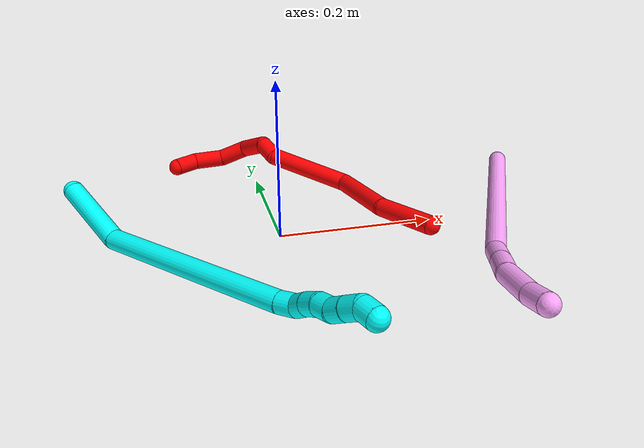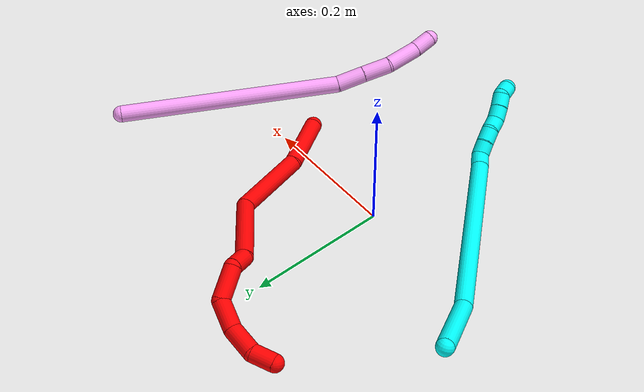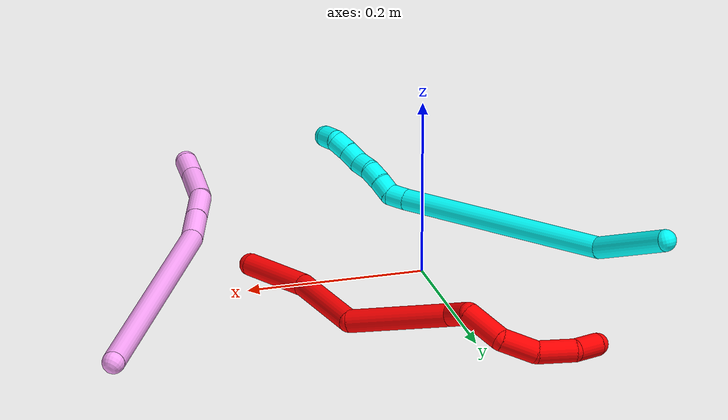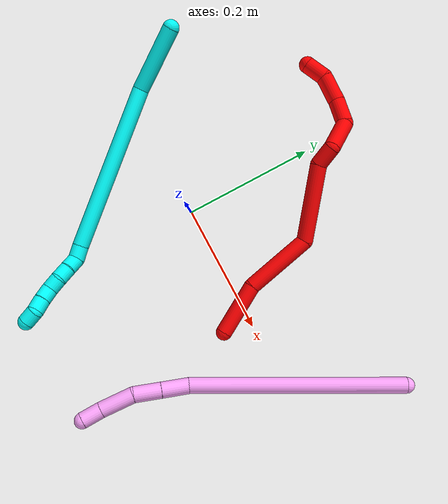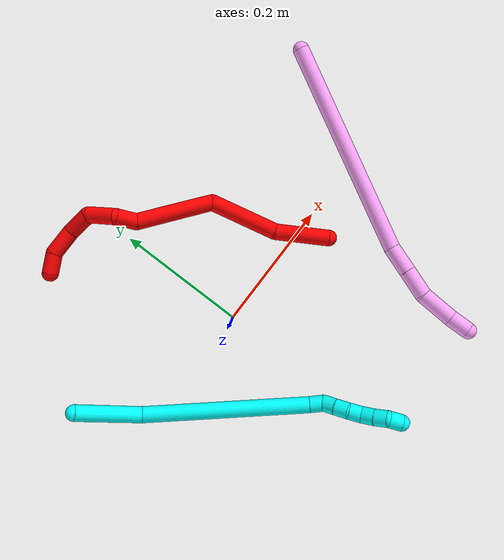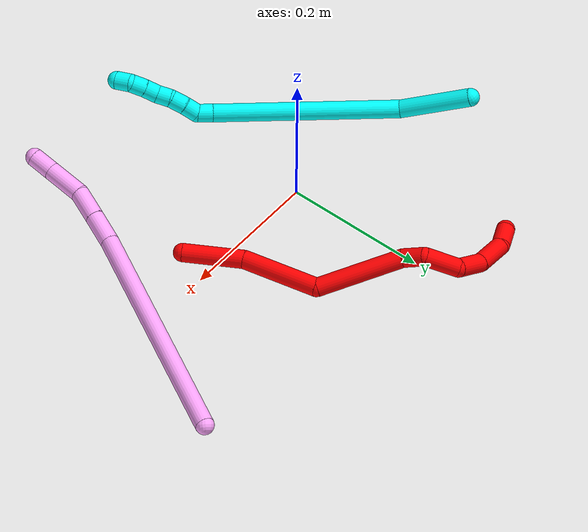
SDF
<sdf version="1.7">
 <world name="default">
  <model name="photoneo_s_sensor">
   <static>1</static>
   <pose>0 0 2 1.57079 1.57079 3.14159</pose>
   <link name="link">
    <inertial><mass>0.1</mass></inertial>
    <sensor name="sensor" type="depth">
     <update_rate>30</update_rate>
     <camera>
      <horizontal_fov>1.22</horizontal_fov>
      <image><width>1920</width><height>1200</height><format>B8G8R8</format></image>
      <clip><near>0.1</near><far>4</far></clip>
      <depth_camera><output>points</output></depth_camera>
     </camera>
     <plugin name="camera_plugin" filename="libgazebo_ros_depth_camera.so">
      <baseline>0.2</baseline>
      <alwaysOn>1</alwaysOn>
      <updateRate>0.0</updateRate>
      <cameraName>camera_ir</cameraName>
      <imageTopicName>/camera/color/image_raw</imageTopicName>
      <cameraInfoTopicName>/camera/color/camera_info</cameraInfoTopicName>
      <depthImageTopicName>/camera/depth/image_raw</depthImageTopicName>
      <depthImageCameraInfoTopicName>/camera/depth/camera_info</depthImageCameraInfoTopicName>
      <pointCloudTopicName>/camera/depth/points</pointCloudTopicName>
      <frameName>fr_optical</frameName>
      <pointCloudCutoff>0.1</pointCloudCutoff>
      <pointCloudCutoffMax>2.0</pointCloudCutoffMax>
      <distortionK1>0</distortionK1>
      <distortionK2>0</distortionK2>
      <distortionK3>0</distortionK3>
      <distortionT1>0</distortionT1>
      <distortionT2>0</distortionT2>
      <CxPrime>0</CxPrime>
      <Cx>0</Cx>
      <Cy>0</Cy>
      <focalLength>0</focalLength>
      <hackBaseline>0</hackBaseline>
     </plugin>
    </sensor>
   </link>
  </model>
  <model name="bin">
   <static>1</static>
   <link name="bottom">
    <collision name="collision-bottom">
     <pose>0 0 -0.01 0 -0 0</pose>
     <geometry><box><size>0.8 0.6 0.02</size></box></geometry>
     <surface>
      <friction><ode><mu>100</mu><mu2>100</mu2></ode></friction>
      <contact><collide_bitmask>65535</collide_bitmask></contact>
     </surface>
    </collision>
   </link>
   <link name="west_wall">
    <collision name="collision-west_wall">
     <pose>-0.41 0 0.1 0 -0 0</pose>
     <geometry><box><size>0.02 0.6 0.2</size></box></geometry>
     <surface>
      <friction><ode><mu>100</mu><mu2>100</mu2></ode></friction>
      <contact><collide_bitmask>65535</collide_bitmask></contact>
     </surface>
    </collision>
   </link>
   <link name="east_wall">
    <collision name="collision-east_wall">
     <pose>0.41 0 0.1 0 -0 0</pose>
     <geometry><box><size>0.02 0.6 0.2</size></box></geometry>
     <surface>
      <friction><ode><mu>100</mu><mu2>100</mu2></ode></friction>
      <contact><collide_bitmask>65535</collide_bitmask></contact>
     </surface>
    </collision>
   </link>
   <link name="south_wall">
    <collision name="collision-south_wall">
     <pose>0 -0.31 0.1 0 -0 0</pose>
     <geometry><box><size>0.8 0.02 0.2</size></box></geometry>
     <surface>
      <friction><ode><mu>100</mu><mu2>100</mu2></ode></friction>
      <contact><collide_bitmask>65535</collide_bitmask></contact>
     </surface>
    </collision>
   </link>
   <link name="north_wall">
    <collision name="collision-north_wall">
     <pose>0 0.31 0.1 0 -0 0</pose>
     <geometry><box><size>0.8 0.02 0.2</size></box></geometry>
     <surface>
      <friction><ode><mu>100</mu><mu2>100</mu2></ode></friction>
      <contact><collide_bitmask>65535</collide_bitmask></contact>
     </surface>
    </collision>
   </link>
  </model>
  <model name="2">
   <static>0</static>
   <link name="2">
    <collision name="collision-cylinder-e_1_1_4">
     <pose>-0.015662 0.020647 0.031912 -0.574262 -0.390855 0.116775</pose>
     <geometry><cylinder><radius>0.0125</radius><length>0.082219</length></cylinder></geometry>
     <surface>
      <friction><ode><mu>1.16</mu><mu2>1.16</mu2><slip1>0</slip1><slip2>0</slip2></ode></friction>
      <contact><ode><kp>1e+06</kp><kd>1</kd><max_vel>0</max_vel><min_depth>0.001</min_depth></ode></contact>
     </surface>
    </collision>
    <visual name="visual-cylinder-e_1_1_4">
     <pose>-0.015662 0.020647 0.031912 -0.574262 -0.390855 0.116775</pose>
     <geometry><cylinder><radius>0.0125</radius><length>0.082219</length></cylinder></geometry>
     <material><ambient>1 0 0 1</ambient></material>
    </visual>
    <collision name="collision-cylinder-e_2_4_5">
     <pose>-0.035295 0.068375 0.10907 -0.539337 -0.075164 0.020784</pose>
     <geometry><cylinder><radius>0.0125</radius><length>0.10576</length></cylinder></geometry>
     <surface>
      <friction><ode><mu>1.16</mu><mu2>1.16</mu2><slip1>0</slip1><slip2>0</slip2></ode></friction>
      <contact><ode><kp>1e+06</kp><kd>1</kd><max_vel>0</max_vel><min_depth>0.001</min_depth></ode></contact>
     </surface>
    </collision>
    <visual name="visual-cylinder-e_2_4_5">
     <pose>-0.035295 0.068375 0.10907 -0.539337 -0.075164 0.020784</pose>
     <geometry><cylinder><radius>0.0125</radius><length>0.10576</length></cylinder></geometry>
     <material><ambient>1 0 0 1</ambient></material>
    </visual>
    <collision name="collision-cylinder-e_3_5_6">
     <pose>-0.081511 0.10928 0.193198 -0.341603 -0.797118 0.145008</pose>
     <geometry><cylinder><radius>0.0125</radius><length>0.118114</length></cylinder></geometry>
     <surface>
      <friction><ode><mu>1.16</mu><mu2>1.16</mu2><slip1>0</slip1><slip2>0</slip2></ode></friction>
      <contact><ode><kp>1e+06</kp><kd>1</kd><max_vel>0</max_vel><min_depth>0.001</min_depth></ode></contact>
     </surface>
    </collision>
    <visual name="visual-cylinder-e_3_5_6">
     <pose>-0.081511 0.10928 0.193198 -0.341603 -0.797118 0.145008</pose>
     <geometry><cylinder><radius>0.0125</radius><length>0.118114</length></cylinder></geometry>
     <material><ambient>1 0 0 1</ambient></material>
    </visual>
    <collision name="collision-cylinder-e_4_6_7">
     <pose>-0.128564 0.125565 0.246769 -0.165962 -0.312197 0.026178</pose>
     <geometry><cylinder><radius>0.0125</radius><length>0.031297</length></cylinder></geometry>
     <surface>
      <friction><ode><mu>1.16</mu><mu2>1.16</mu2><slip1>0</slip1><slip2>0</slip2></ode></friction>
      <contact><ode><kp>1e+06</kp><kd>1</kd><max_vel>0</max_vel><min_depth>0.001</min_depth></ode></contact>
     </surface>
    </collision>
    <visual name="visual-cylinder-e_4_6_7">
     <pose>-0.128564 0.125565 0.246769 -0.165962 -0.312197 0.026178</pose>
     <geometry><cylinder><radius>0.0125</radius><length>0.031297</length></cylinder></geometry>
     <material><ambient>1 0 0 1</ambient></material>
    </visual>
    <collision name="collision-cylinder-e_5_7_8">
     <pose>-0.141258 0.146158 0.274407 -0.950589 -0.340228 0.176347</pose>
     <geometry><cylinder><radius>0.0125</radius><length>0.047276</length></cylinder></geometry>
     <surface>
      <friction><ode><mu>1.16</mu><mu2>1.16</mu2><slip1>0</slip1><slip2>0</slip2></ode></friction>
      <contact><ode><kp>1e+06</kp><kd>1</kd><max_vel>0</max_vel><min_depth>0.001</min_depth></ode></contact>
     </surface>
    </collision>
    <visual name="visual-cylinder-e_5_7_8">
     <pose>-0.141258 0.146158 0.274407 -0.950589 -0.340228 0.176347</pose>
     <geometry><cylinder><radius>0.0125</radius><length>0.047276</length></cylinder></geometry>
     <material><ambient>1 0 0 1</ambient></material>
    </visual>
    <collision name="collision-cylinder-e_6_8_9">
     <pose>-0.165353 0.176625 0.288458 -1.48186 -0.918368 0.84954</pose>
     <geometry><cylinder><radius>0.0125</radius><length>0.040792</length></cylinder></geometry>
     <surface>
      <friction><ode><mu>1.16</mu><mu2>1.16</mu2><slip1>0</slip1><slip2>0</slip2></ode></friction>
      <contact><ode><kp>1e+06</kp><kd>1</kd><max_vel>0</max_vel><min_depth>0.001</min_depth></ode></contact>
     </surface>
    </collision>
    <visual name="visual-cylinder-e_6_8_9">
     <pose>-0.165353 0.176625 0.288458 -1.48186 -0.918368 0.84954</pose>
     <geometry><cylinder><radius>0.0125</radius><length>0.040792</length></cylinder></geometry>
     <material><ambient>1 0 0 1</ambient></material>
    </visual>
    <collision name="collision-cylinder-e_7_9_10">
     <pose>-0.202155 0.194371 0.290642 -1.3731 -1.30891 1.12266</pose>
     <geometry><cylinder><radius>0.0125</radius><length>0.042643</length></cylinder></geometry>
     <surface>
      <friction><ode><mu>1.16</mu><mu2>1.16</mu2><slip1>0</slip1><slip2>0</slip2></ode></friction>
      <contact><ode><kp>1e+06</kp><kd>1</kd><max_vel>0</max_vel><min_depth>0.001</min_depth></ode></contact>
     </surface>
    </collision>
    <visual name="visual-cylinder-e_7_9_10">
     <pose>-0.202155 0.194371 0.290642 -1.3731 -1.30891 1.12266</pose>
     <geometry><cylinder><radius>0.0125</radius><length>0.042643</length></cylinder></geometry>
     <material><ambient>1 0 0 1</ambient></material>
    </visual>
    <collision name="collision-cylinder-e_8_10_2">
     <pose>-0.237651 0.200527 0.286088 -3.01059 -1.20623 2.95168</pose>
     <geometry><cylinder><radius>0.0125</radius><length>0.031899</length></cylinder></geometry>
     <surface>
      <friction><ode><mu>1.16</mu><mu2>1.16</mu2><slip1>0</slip1><slip2>0</slip2></ode></friction>
      <contact><ode><kp>1e+06</kp><kd>1</kd><max_vel>0</max_vel><min_depth>0.001</min_depth></ode></contact>
     </surface>
    </collision>
    <visual name="visual-cylinder-e_8_10_2">
     <pose>-0.237651 0.200527 0.286088 -3.01059 -1.20623 2.95168</pose>
     <geometry><cylinder><radius>0.0125</radius><length>0.031899</length></cylinder></geometry>
     <material><ambient>1 0 0 1</ambient></material>
    </visual>
    <collision name="collision-sphere-2">
     <pose>-0.252552 0.20127 0.28045 0 -0 0</pose>
     <geometry><sphere><radius>0.0125</radius></sphere></geometry>
     <surface>
      <friction><ode><mu>1.16</mu><mu2>1.16</mu2><slip1>0</slip1><slip2>0</slip2></ode></friction>
      <contact><ode><kp>1e+06</kp><kd>1</kd><max_vel>0</max_vel><min_depth>0.001</min_depth></ode></contact>
     </surface>
    </collision>
    <visual name="visual-sphere-2">
     <pose>-0.252552 0.20127 0.28045 0 -0 0</pose>
     <geometry><sphere><radius>0.0125</radius></sphere></geometry>
     <material><ambient>1 0 0 1</ambient></material>
    </visual>
    <collision name="collision-sphere-10">
     <pose>-0.222749 0.199784 0.291726 0 -0 0</pose>
     <geometry><sphere><radius>0.0125</radius></sphere></geometry>
     <surface>
      <friction><ode><mu>1.16</mu><mu2>1.16</mu2><slip1>0</slip1><slip2>0</slip2></ode></friction>
      <contact><ode><kp>1e+06</kp><kd>1</kd><max_vel>0</max_vel><min_depth>0.001</min_depth></ode></contact>
     </surface>
    </collision>
    <visual name="visual-sphere-10">
     <pose>-0.222749 0.199784 0.291726 0 -0 0</pose>
     <geometry><sphere><radius>0.0125</radius></sphere></geometry>
     <material><ambient>1 0 0 1</ambient></material>
    </visual>
    <collision name="collision-sphere-9">
     <pose>-0.181561 0.188959 0.289557 0 -0 0</pose>
     <geometry><sphere><radius>0.0125</radius></sphere></geometry>
     <surface>
      <friction><ode><mu>1.16</mu><mu2>1.16</mu2><slip1>0</slip1><slip2>0</slip2></ode></friction>
      <contact><ode><kp>1e+06</kp><kd>1</kd><max_vel>0</max_vel><min_depth>0.001</min_depth></ode></contact>
     </surface>
    </collision>
    <visual name="visual-sphere-9">
     <pose>-0.181561 0.188959 0.289557 0 -0 0</pose>
     <geometry><sphere><radius>0.0125</radius></sphere></geometry>
     <material><ambient>1 0 0 1</ambient></material>
    </visual>
    <collision name="collision-sphere-4">
     <pose>-0.031324 0.041294 0.063824 0 -0 0</pose>
     <geometry><sphere><radius>0.0125</radius></sphere></geometry>
     <surface>
      <friction><ode><mu>1.16</mu><mu2>1.16</mu2><slip1>0</slip1><slip2>0</slip2></ode></friction>
      <contact><ode><kp>1e+06</kp><kd>1</kd><max_vel>0</max_vel><min_depth>0.001</min_depth></ode></contact>
     </surface>
    </collision>
    <visual name="visual-sphere-4">
     <pose>-0.031324 0.041294 0.063824 0 -0 0</pose>
     <geometry><sphere><radius>0.0125</radius></sphere></geometry>
     <material><ambient>1 0 0 1</ambient></material>
    </visual>
    <collision name="collision-sphere-1">
     <geometry><sphere><radius>0.0125</radius></sphere></geometry>
     <surface>
      <friction><ode><mu>1.16</mu><mu2>1.16</mu2><slip1>0</slip1><slip2>0</slip2></ode></friction>
      <contact><ode><kp>1e+06</kp><kd>1</kd><max_vel>0</max_vel><min_depth>0.001</min_depth></ode></contact>
     </surface>
    </collision>
    <visual name="visual-sphere-1">
     <geometry><sphere><radius>0.0125</radius></sphere></geometry>
     <material><ambient>1 0 0 1</ambient></material>
    </visual>
    <collision name="collision-sphere-8">
     <pose>-0.149146 0.164291 0.287358 0 -0 0</pose>
     <geometry><sphere><radius>0.0125</radius></sphere></geometry>
     <surface>
      <friction><ode><mu>1.16</mu><mu2>1.16</mu2><slip1>0</slip1><slip2>0</slip2></ode></friction>
      <contact><ode><kp>1e+06</kp><kd>1</kd><max_vel>0</max_vel><min_depth>0.001</min_depth></ode></contact>
     </surface>
    </collision>
    <visual name="visual-sphere-8">
     <pose>-0.149146 0.164291 0.287358 0 -0 0</pose>
     <geometry><sphere><radius>0.0125</radius></sphere></geometry>
     <material><ambient>1 0 0 1</ambient></material>
    </visual>
    <collision name="collision-sphere-5">
     <pose>-0.039265 0.095456 0.154316 0 -0 0</pose>
     <geometry><sphere><radius>0.0125</radius></sphere></geometry>
     <surface>
      <friction><ode><mu>1.16</mu><mu2>1.16</mu2><slip1>0</slip1><slip2>0</slip2></ode></friction>
      <contact><ode><kp>1e+06</kp><kd>1</kd><max_vel>0</max_vel><min_depth>0.001</min_depth></ode></contact>
     </surface>
    </collision>
    <visual name="visual-sphere-5">
     <pose>-0.039265 0.095456 0.154316 0 -0 0</pose>
     <geometry><sphere><radius>0.0125</radius></sphere></geometry>
     <material><ambient>1 0 0 1</ambient></material>
    </visual>
    <collision name="collision-sphere-6">
     <pose>-0.123758 0.123105 0.232081 0 -0 0</pose>
     <geometry><sphere><radius>0.0125</radius></sphere></geometry>
     <surface>
      <friction><ode><mu>1.16</mu><mu2>1.16</mu2><slip1>0</slip1><slip2>0</slip2></ode></friction>
      <contact><ode><kp>1e+06</kp><kd>1</kd><max_vel>0</max_vel><min_depth>0.001</min_depth></ode></contact>
     </surface>
    </collision>
    <visual name="visual-sphere-6">
     <pose>-0.123758 0.123105 0.232081 0 -0 0</pose>
     <geometry><sphere><radius>0.0125</radius></sphere></geometry>
     <material><ambient>1 0 0 1</ambient></material>
    </visual>
    <collision name="collision-sphere-7">
     <pose>-0.13337 0.128025 0.261456 0 -0 0</pose>
     <geometry><sphere><radius>0.0125</radius></sphere></geometry>
     <surface>
      <friction><ode><mu>1.16</mu><mu2>1.16</mu2><slip1>0</slip1><slip2>0</slip2></ode></friction>
      <contact><ode><kp>1e+06</kp><kd>1</kd><max_vel>0</max_vel><min_depth>0.001</min_depth></ode></contact>
     </surface>
    </collision>
    <visual name="visual-sphere-7">
     <pose>-0.13337 0.128025 0.261456 0 -0 0</pose>
     <geometry><sphere><radius>0.0125</radius></sphere></geometry>
     <material><ambient>1 0 0 1</ambient></material>
    </visual>
    <inertial>
     <pose>-0.096593 0.109132 0.181922 0 -0 0</pose>
     <mass>0.5</mass>
     <inertia>
      <ixx>0.000271</ixx>
      <ixy>0</ixy>
      <ixz>0</ixz>
      <iyy>0.000339</iyy>
      <iyz>0</iyz>
      <izz>4.6e-05</izz>
     </inertia>
    </inertial>
   </link>
   <pose>0.185904 -0.042145 0.012139 -1.05073 0.139214 0.140332</pose>
  </model>
  <model name="3">
   <static>0</static>
   <link name="3">
    <collision name="collision-cylinder-e_1_1_4">
     <pose>0.022117 -0.045421 0.004874 1.46389 0.450892 0.40641</pose>
     <geometry><cylinder><radius>0.0125</radius><length>0.101509</length></cylinder></geometry>
     <surface>
      <friction><ode><mu>1.16</mu><mu2>1.16</mu2><slip1>0</slip1><slip2>0</slip2></ode></friction>
      <contact><ode><kp>1e+06</kp><kd>1</kd><max_vel>0</max_vel><min_depth>0.001</min_depth></ode></contact>
     </surface>
    </collision>
    <visual name="visual-cylinder-e_1_1_4">
     <pose>0.022117 -0.045421 0.004874 1.46389 0.450892 0.40641</pose>
     <geometry><cylinder><radius>0.0125</radius><length>0.101509</length></cylinder></geometry>
     <material><ambient>0.003922 1 0.996078 1</ambient></material>
    </visual>
    <collision name="collision-cylinder-e_2_4_5">
     <pose>0.118193 -0.180299 0.063463 1.03005 0.61661 0.35665</pose>
     <geometry><cylinder><radius>0.0125</radius><length>0.255792</length></cylinder></geometry>
     <surface>
      <friction><ode><mu>1.16</mu><mu2>1.16</mu2><slip1>0</slip1><slip2>0</slip2></ode></friction>
      <contact><ode><kp>1e+06</kp><kd>1</kd><max_vel>0</max_vel><min_depth>0.001</min_depth></ode></contact>
     </surface>
    </collision>
    <visual name="visual-cylinder-e_2_4_5">
     <pose>0.118193 -0.180299 0.063463 1.03005 0.61661 0.35665</pose>
     <geometry><cylinder><radius>0.0125</radius><length>0.255792</length></cylinder></geometry>
     <material><ambient>0.003922 1 0.996078 1</ambient></material>
    </visual>
    <collision name="collision-cylinder-e_3_5_6">
     <pose>0.198849 -0.276346 0.122466 0.89448 0.670097 0.330954</pose>
     <geometry><cylinder><radius>0.0125</radius><length>0.021566</length></cylinder></geometry>
     <surface>
      <friction><ode><mu>1.16</mu><mu2>1.16</mu2><slip1>0</slip1><slip2>0</slip2></ode></friction>
      <contact><ode><kp>1e+06</kp><kd>1</kd><max_vel>0</max_vel><min_depth>0.001</min_depth></ode></contact>
     </surface>
    </collision>
    <visual name="visual-cylinder-e_3_5_6">
     <pose>0.198849 -0.276346 0.122466 0.89448 0.670097 0.330954</pose>
     <geometry><cylinder><radius>0.0125</radius><length>0.021566</length></cylinder></geometry>
     <material><ambient>0.003922 1 0.996078 1</ambient></material>
    </visual>
    <collision name="collision-cylinder-e_4_6_7">
     <pose>0.207947 -0.28768 0.136397 0.502023 0.238919 0.061537</pose>
     <geometry><cylinder><radius>0.0125</radius><length>0.020291</length></cylinder></geometry>
     <surface>
      <friction><ode><mu>1.16</mu><mu2>1.16</mu2><slip1>0</slip1><slip2>0</slip2></ode></friction>
      <contact><ode><kp>1e+06</kp><kd>1</kd><max_vel>0</max_vel><min_depth>0.001</min_depth></ode></contact>
     </surface>
    </collision>
    <visual name="visual-cylinder-e_4_6_7">
     <pose>0.207947 -0.28768 0.136397 0.502023 0.238919 0.061537</pose>
     <geometry><cylinder><radius>0.0125</radius><length>0.020291</length></cylinder></geometry>
     <material><ambient>0.003922 1 0.996078 1</ambient></material>
    </visual>
    <collision name="collision-cylinder-e_5_7_8">
     <pose>0.212975 -0.29824 0.153221 0.617918 0.255907 0.082083</pose>
     <geometry><cylinder><radius>0.0125</radius><length>0.020754</length></cylinder></geometry>
     <surface>
      <friction><ode><mu>1.16</mu><mu2>1.16</mu2><slip1>0</slip1><slip2>0</slip2></ode></friction>
      <contact><ode><kp>1e+06</kp><kd>1</kd><max_vel>0</max_vel><min_depth>0.001</min_depth></ode></contact>
     </surface>
    </collision>
    <visual name="visual-cylinder-e_5_7_8">
     <pose>0.212975 -0.29824 0.153221 0.617918 0.255907 0.082083</pose>
     <geometry><cylinder><radius>0.0125</radius><length>0.020754</length></cylinder></geometry>
     <material><ambient>0.003922 1 0.996078 1</ambient></material>
    </visual>
    <collision name="collision-cylinder-e_6_8_9">
     <pose>0.218482 -0.31161 0.16731 0.90727 0.291837 0.143058</pose>
     <geometry><cylinder><radius>0.0125</radius><length>0.020024</length></cylinder></geometry>
     <surface>
      <friction><ode><mu>1.16</mu><mu2>1.16</mu2><slip1>0</slip1><slip2>0</slip2></ode></friction>
      <contact><ode><kp>1e+06</kp><kd>1</kd><max_vel>0</max_vel><min_depth>0.001</min_depth></ode></contact>
     </surface>
    </collision>
    <visual name="visual-cylinder-e_6_8_9">
     <pose>0.218482 -0.31161 0.16731 0.90727 0.291837 0.143058</pose>
     <geometry><cylinder><radius>0.0125</radius><length>0.020024</length></cylinder></geometry>
     <material><ambient>0.003922 1 0.996078 1</ambient></material>
    </visual>
    <collision name="collision-cylinder-e_7_9_10">
     <pose>0.224757 -0.323922 0.181342 0.529639 0.345918 0.094685</pose>
     <geometry><cylinder><radius>0.0125</radius><length>0.020019</length></cylinder></geometry>
     <surface>
      <friction><ode><mu>1.16</mu><mu2>1.16</mu2><slip1>0</slip1><slip2>0</slip2></ode></friction>
      <contact><ode><kp>1e+06</kp><kd>1</kd><max_vel>0</max_vel><min_depth>0.001</min_depth></ode></contact>
     </surface>
    </collision>
    <visual name="visual-cylinder-e_7_9_10">
     <pose>0.224757 -0.323922 0.181342 0.529639 0.345918 0.094685</pose>
     <geometry><cylinder><radius>0.0125</radius><length>0.020019</length></cylinder></geometry>
     <material><ambient>0.003922 1 0.996078 1</ambient></material>
    </visual>
    <collision name="collision-cylinder-e_8_10_11">
     <pose>0.232297 -0.333404 0.197254 0.545451 0.427258 0.121205</pose>
     <geometry><cylinder><radius>0.0125</radius><length>0.020015</length></cylinder></geometry>
     <surface>
      <friction><ode><mu>1.16</mu><mu2>1.16</mu2><slip1>0</slip1><slip2>0</slip2></ode></friction>
      <contact><ode><kp>1e+06</kp><kd>1</kd><max_vel>0</max_vel><min_depth>0.001</min_depth></ode></contact>
     </surface>
    </collision>
    <visual name="visual-cylinder-e_8_10_11">
     <pose>0.232297 -0.333404 0.197254 0.545451 0.427258 0.121205</pose>
     <geometry><cylinder><radius>0.0125</radius><length>0.020015</length></cylinder></geometry>
     <material><ambient>0.003922 1 0.996078 1</ambient></material>
    </visual>
    <collision name="collision-cylinder-e_9_11_2">
     <pose>0.239193 -0.346834 0.20916 1.12874 0.278006 0.176675</pose>
     <geometry><cylinder><radius>0.0125</radius><length>0.020028</length></cylinder></geometry>
     <surface>
      <friction><ode><mu>1.16</mu><mu2>1.16</mu2><slip1>0</slip1><slip2>0</slip2></ode></friction>
      <contact><ode><kp>1e+06</kp><kd>1</kd><max_vel>0</max_vel><min_depth>0.001</min_depth></ode></contact>
     </surface>
    </collision>
    <visual name="visual-cylinder-e_9_11_2">
     <pose>0.239193 -0.346834 0.20916 1.12874 0.278006 0.176675</pose>
     <geometry><cylinder><radius>0.0125</radius><length>0.020028</length></cylinder></geometry>
     <material><ambient>0.003922 1 0.996078 1</ambient></material>
    </visual>
    <collision name="collision-sphere-2">
     <pose>0.241941 -0.355538 0.21328 0 -0 0</pose>
     <geometry><sphere><radius>0.0125</radius></sphere></geometry>
     <surface>
      <friction><ode><mu>1.16</mu><mu2>1.16</mu2><slip1>0</slip1><slip2>0</slip2></ode></friction>
      <contact><ode><kp>1e+06</kp><kd>1</kd><max_vel>0</max_vel><min_depth>0.001</min_depth></ode></contact>
     </surface>
    </collision>
    <visual name="visual-sphere-2">
     <pose>0.241941 -0.355538 0.21328 0 -0 0</pose>
     <geometry><sphere><radius>0.0125</radius></sphere></geometry>
     <material><ambient>0.003922 1 0.996078 1</ambient></material>
    </visual>
    <collision name="collision-sphere-11">
     <pose>0.236444 -0.33813 0.205041 0 -0 0</pose>
     <geometry><sphere><radius>0.0125</radius></sphere></geometry>
     <surface>
      <friction><ode><mu>1.16</mu><mu2>1.16</mu2><slip1>0</slip1><slip2>0</slip2></ode></friction>
      <contact><ode><kp>1e+06</kp><kd>1</kd><max_vel>0</max_vel><min_depth>0.001</min_depth></ode></contact>
     </surface>
    </collision>
    <visual name="visual-sphere-11">
     <pose>0.236444 -0.33813 0.205041 0 -0 0</pose>
     <geometry><sphere><radius>0.0125</radius></sphere></geometry>
     <material><ambient>0.003922 1 0.996078 1</ambient></material>
    </visual>
    <collision name="collision-sphere-10">
     <pose>0.22815 -0.328679 0.189468 0 -0 0</pose>
     <geometry><sphere><radius>0.0125</radius></sphere></geometry>
     <surface>
      <friction><ode><mu>1.16</mu><mu2>1.16</mu2><slip1>0</slip1><slip2>0</slip2></ode></friction>
      <contact><ode><kp>1e+06</kp><kd>1</kd><max_vel>0</max_vel><min_depth>0.001</min_depth></ode></contact>
     </surface>
    </collision>
    <visual name="visual-sphere-10">
     <pose>0.22815 -0.328679 0.189468 0 -0 0</pose>
     <geometry><sphere><radius>0.0125</radius></sphere></geometry>
     <material><ambient>0.003922 1 0.996078 1</ambient></material>
    </visual>
    <collision name="collision-sphere-9">
     <pose>0.221363 -0.319164 0.173216 0 -0 0</pose>
     <geometry><sphere><radius>0.0125</radius></sphere></geometry>
     <surface>
      <friction><ode><mu>1.16</mu><mu2>1.16</mu2><slip1>0</slip1><slip2>0</slip2></ode></friction>
      <contact><ode><kp>1e+06</kp><kd>1</kd><max_vel>0</max_vel><min_depth>0.001</min_depth></ode></contact>
     </surface>
    </collision>
    <visual name="visual-sphere-9">
     <pose>0.221363 -0.319164 0.173216 0 -0 0</pose>
     <geometry><sphere><radius>0.0125</radius></sphere></geometry>
     <material><ambient>0.003922 1 0.996078 1</ambient></material>
    </visual>
    <collision name="collision-sphere-4">
     <pose>0.044234 -0.090843 0.009749 0 -0 0</pose>
     <geometry><sphere><radius>0.0125</radius></sphere></geometry>
     <surface>
      <friction><ode><mu>1.16</mu><mu2>1.16</mu2><slip1>0</slip1><slip2>0</slip2></ode></friction>
      <contact><ode><kp>1e+06</kp><kd>1</kd><max_vel>0</max_vel><min_depth>0.001</min_depth></ode></contact>
     </surface>
    </collision>
    <visual name="visual-sphere-4">
     <pose>0.044234 -0.090843 0.009749 0 -0 0</pose>
     <geometry><sphere><radius>0.0125</radius></sphere></geometry>
     <material><ambient>0.003922 1 0.996078 1</ambient></material>
    </visual>
    <collision name="collision-sphere-1">
     <geometry><sphere><radius>0.0125</radius></sphere></geometry>
     <surface>
      <friction><ode><mu>1.16</mu><mu2>1.16</mu2><slip1>0</slip1><slip2>0</slip2></ode></friction>
      <contact><ode><kp>1e+06</kp><kd>1</kd><max_vel>0</max_vel><min_depth>0.001</min_depth></ode></contact>
     </surface>
    </collision>
    <visual name="visual-sphere-1">
     <geometry><sphere><radius>0.0125</radius></sphere></geometry>
     <material><ambient>0.003922 1 0.996078 1</ambient></material>
    </visual>
    <collision name="collision-sphere-8">
     <pose>0.215602 -0.304056 0.161404 0 -0 0</pose>
     <geometry><sphere><radius>0.0125</radius></sphere></geometry>
     <surface>
      <friction><ode><mu>1.16</mu><mu2>1.16</mu2><slip1>0</slip1><slip2>0</slip2></ode></friction>
      <contact><ode><kp>1e+06</kp><kd>1</kd><max_vel>0</max_vel><min_depth>0.001</min_depth></ode></contact>
     </surface>
    </collision>
    <visual name="visual-sphere-8">
     <pose>0.215602 -0.304056 0.161404 0 -0 0</pose>
     <geometry><sphere><radius>0.0125</radius></sphere></geometry>
     <material><ambient>0.003922 1 0.996078 1</ambient></material>
    </visual>
    <collision name="collision-sphere-5">
     <pose>0.192152 -0.269755 0.117176 0 -0 0</pose>
     <geometry><sphere><radius>0.0125</radius></sphere></geometry>
     <surface>
      <friction><ode><mu>1.16</mu><mu2>1.16</mu2><slip1>0</slip1><slip2>0</slip2></ode></friction>
      <contact><ode><kp>1e+06</kp><kd>1</kd><max_vel>0</max_vel><min_depth>0.001</min_depth></ode></contact>
     </surface>
    </collision>
    <visual name="visual-sphere-5">
     <pose>0.192152 -0.269755 0.117176 0 -0 0</pose>
     <geometry><sphere><radius>0.0125</radius></sphere></geometry>
     <material><ambient>0.003922 1 0.996078 1</ambient></material>
    </visual>
    <collision name="collision-sphere-6">
     <pose>0.205546 -0.282937 0.127756 0 -0 0</pose>
     <geometry><sphere><radius>0.0125</radius></sphere></geometry>
     <surface>
      <friction><ode><mu>1.16</mu><mu2>1.16</mu2><slip1>0</slip1><slip2>0</slip2></ode></friction>
      <contact><ode><kp>1e+06</kp><kd>1</kd><max_vel>0</max_vel><min_depth>0.001</min_depth></ode></contact>
     </surface>
    </collision>
    <visual name="visual-sphere-6">
     <pose>0.205546 -0.282937 0.127756 0 -0 0</pose>
     <geometry><sphere><radius>0.0125</radius></sphere></geometry>
     <material><ambient>0.003922 1 0.996078 1</ambient></material>
    </visual>
    <collision name="collision-sphere-7">
     <pose>0.210348 -0.292424 0.145039 0 -0 0</pose>
     <geometry><sphere><radius>0.0125</radius></sphere></geometry>
     <surface>
      <friction><ode><mu>1.16</mu><mu2>1.16</mu2><slip1>0</slip1><slip2>0</slip2></ode></friction>
      <contact><ode><kp>1e+06</kp><kd>1</kd><max_vel>0</max_vel><min_depth>0.001</min_depth></ode></contact>
     </surface>
    </collision>
    <visual name="visual-sphere-7">
     <pose>0.210348 -0.292424 0.145039 0 -0 0</pose>
     <geometry><sphere><radius>0.0125</radius></sphere></geometry>
     <material><ambient>0.003922 1 0.996078 1</ambient></material>
    </visual>
    <inertial>
     <pose>0.127441 -0.190121 0.080869 0 -0 0</pose>
     <mass>0.5</mass>
     <inertia>
      <ixx>0.001612</ixx>
      <ixy>0</ixy>
      <ixz>0</ixz>
      <iyy>0.001359</iyy>
      <iyz>0</iyz>
      <izz>0.000231</izz>
     </inertia>
    </inertial>
   </link>
   <pose>-0.249275 0.101224 0.049074 0.473539 0.098681 0.092715</pose>
  </model>
  <model name="4">
   <static>0</static>
   <link name="4">
    <collision name="collision-cylinder-e_1_1_4">
     <pose>-0.042188 -0.090936 -0.132316 2.53946 -0.256961 -0.788572</pose>
     <geometry><cylinder><radius>0.0125</radius><length>0.332005</length></cylinder></geometry>
     <surface>
      <friction><ode><mu>1.16</mu><mu2>1.16</mu2><slip1>0</slip1><slip2>0</slip2></ode></friction>
      <contact><ode><kp>1e+06</kp><kd>1</kd><max_vel>0</max_vel><min_depth>0.001</min_depth></ode></contact>
     </surface>
    </collision>
    <visual name="visual-cylinder-e_1_1_4">
     <pose>-0.042188 -0.090936 -0.132316 2.53946 -0.256961 -0.788572</pose>
     <geometry><cylinder><radius>0.0125</radius><length>0.332005</length></cylinder></geometry>
     <material><ambient>1 0.65098 0.996078 1</ambient></material>
    </visual>
    <collision name="collision-cylinder-e_2_4_5">
     <pose>-0.092463 -0.189575 -0.282928 2.74313 -0.386831 -1.54039</pose>
     <geometry><cylinder><radius>0.0125</radius><length>0.042868</length></cylinder></geometry>
     <surface>
      <friction><ode><mu>1.16</mu><mu2>1.16</mu2><slip1>0</slip1><slip2>0</slip2></ode></friction>
      <contact><ode><kp>1e+06</kp><kd>1</kd><max_vel>0</max_vel><min_depth>0.001</min_depth></ode></contact>
     </surface>
    </collision>
    <visual name="visual-cylinder-e_2_4_5">
     <pose>-0.092463 -0.189575 -0.282928 2.74313 -0.386831 -1.54039</pose>
     <geometry><cylinder><radius>0.0125</radius><length>0.042868</length></cylinder></geometry>
     <material><ambient>1 0.65098 0.996078 1</ambient></material>
    </visual>
    <collision name="collision-cylinder-e_3_5_6">
     <pose>-0.108521 -0.205278 -0.318996 2.71859 -0.388252 -1.48278</pose>
     <geometry><cylinder><radius>0.0125</radius><length>0.042117</length></cylinder></geometry>
     <surface>
      <friction><ode><mu>1.16</mu><mu2>1.16</mu2><slip1>0</slip1><slip2>0</slip2></ode></friction>
      <contact><ode><kp>1e+06</kp><kd>1</kd><max_vel>0</max_vel><min_depth>0.001</min_depth></ode></contact>
     </surface>
    </collision>
    <visual name="visual-cylinder-e_3_5_6">
     <pose>-0.108521 -0.205278 -0.318996 2.71859 -0.388252 -1.48278</pose>
     <geometry><cylinder><radius>0.0125</radius><length>0.042117</length></cylinder></geometry>
     <material><ambient>1 0.65098 0.996078 1</ambient></material>
    </visual>
    <collision name="collision-cylinder-e_4_6_7">
     <pose>-0.132976 -0.223028 -0.35443 2.63724 -0.685086 -1.89019</pose>
     <geometry><cylinder><radius>0.0125</radius><length>0.052101</length></cylinder></geometry>
     <surface>
      <friction><ode><mu>1.16</mu><mu2>1.16</mu2><slip1>0</slip1><slip2>0</slip2></ode></friction>
      <contact><ode><kp>1e+06</kp><kd>1</kd><max_vel>0</max_vel><min_depth>0.001</min_depth></ode></contact>
     </surface>
    </collision>
    <visual name="visual-cylinder-e_4_6_7">
     <pose>-0.132976 -0.223028 -0.35443 2.63724 -0.685086 -1.89019</pose>
     <geometry><cylinder><radius>0.0125</radius><length>0.052101</length></cylinder></geometry>
     <material><ambient>1 0.65098 0.996078 1</ambient></material>
    </visual>
    <collision name="collision-cylinder-e_5_7_2">
     <pose>-0.159907 -0.236795 -0.382747 2.78094 -0.742327 -2.26548</pose>
     <geometry><cylinder><radius>0.0125</radius><length>0.030908</length></cylinder></geometry>
     <surface>
      <friction><ode><mu>1.16</mu><mu2>1.16</mu2><slip1>0</slip1><slip2>0</slip2></ode></friction>
      <contact><ode><kp>1e+06</kp><kd>1</kd><max_vel>0</max_vel><min_depth>0.001</min_depth></ode></contact>
     </surface>
    </collision>
    <visual name="visual-cylinder-e_5_7_2">
     <pose>-0.159907 -0.236795 -0.382747 2.78094 -0.742327 -2.26548</pose>
     <geometry><cylinder><radius>0.0125</radius><length>0.030908</length></cylinder></geometry>
     <material><ambient>1 0.65098 0.996078 1</ambient></material>
    </visual>
    <collision name="collision-sphere-2">
     <pose>-0.170354 -0.240813 -0.393402 0 -0 0</pose>
     <geometry><sphere><radius>0.0125</radius></sphere></geometry>
     <surface>
      <friction><ode><mu>1.16</mu><mu2>1.16</mu2><slip1>0</slip1><slip2>0</slip2></ode></friction>
      <contact><ode><kp>1e+06</kp><kd>1</kd><max_vel>0</max_vel><min_depth>0.001</min_depth></ode></contact>
     </surface>
    </collision>
    <visual name="visual-sphere-2">
     <pose>-0.170354 -0.240813 -0.393402 0 -0 0</pose>
     <geometry><sphere><radius>0.0125</radius></sphere></geometry>
     <material><ambient>1 0.65098 0.996078 1</ambient></material>
    </visual>
    <collision name="collision-sphere-7">
     <pose>-0.14946 -0.232776 -0.372091 0 -0 0</pose>
     <geometry><sphere><radius>0.0125</radius></sphere></geometry>
     <surface>
      <friction><ode><mu>1.16</mu><mu2>1.16</mu2><slip1>0</slip1><slip2>0</slip2></ode></friction>
      <contact><ode><kp>1e+06</kp><kd>1</kd><max_vel>0</max_vel><min_depth>0.001</min_depth></ode></contact>
     </surface>
    </collision>
    <visual name="visual-sphere-7">
     <pose>-0.14946 -0.232776 -0.372091 0 -0 0</pose>
     <geometry><sphere><radius>0.0125</radius></sphere></geometry>
     <material><ambient>1 0.65098 0.996078 1</ambient></material>
    </visual>
    <collision name="collision-sphere-6">
     <pose>-0.116493 -0.213279 -0.33677 0 -0 0</pose>
     <geometry><sphere><radius>0.0125</radius></sphere></geometry>
     <surface>
      <friction><ode><mu>1.16</mu><mu2>1.16</mu2><slip1>0</slip1><slip2>0</slip2></ode></friction>
      <contact><ode><kp>1e+06</kp><kd>1</kd><max_vel>0</max_vel><min_depth>0.001</min_depth></ode></contact>
     </surface>
    </collision>
    <visual name="visual-sphere-6">
     <pose>-0.116493 -0.213279 -0.33677 0 -0 0</pose>
     <geometry><sphere><radius>0.0125</radius></sphere></geometry>
     <material><ambient>1 0.65098 0.996078 1</ambient></material>
    </visual>
    <collision name="collision-sphere-5">
     <pose>-0.100549 -0.197277 -0.301223 0 -0 0</pose>
     <geometry><sphere><radius>0.0125</radius></sphere></geometry>
     <surface>
      <friction><ode><mu>1.16</mu><mu2>1.16</mu2><slip1>0</slip1><slip2>0</slip2></ode></friction>
      <contact><ode><kp>1e+06</kp><kd>1</kd><max_vel>0</max_vel><min_depth>0.001</min_depth></ode></contact>
     </surface>
    </collision>
    <visual name="visual-sphere-5">
     <pose>-0.100549 -0.197277 -0.301223 0 -0 0</pose>
     <geometry><sphere><radius>0.0125</radius></sphere></geometry>
     <material><ambient>1 0.65098 0.996078 1</ambient></material>
    </visual>
    <collision name="collision-sphere-1">
     <geometry><sphere><radius>0.0125</radius></sphere></geometry>
     <surface>
      <friction><ode><mu>1.16</mu><mu2>1.16</mu2><slip1>0</slip1><slip2>0</slip2></ode></friction>
      <contact><ode><kp>1e+06</kp><kd>1</kd><max_vel>0</max_vel><min_depth>0.001</min_depth></ode></contact>
     </surface>
    </collision>
    <visual name="visual-sphere-1">
     <geometry><sphere><radius>0.0125</radius></sphere></geometry>
     <material><ambient>1 0.65098 0.996078 1</ambient></material>
    </visual>
    <collision name="collision-sphere-4">
     <pose>-0.084377 -0.181873 -0.264633 0 -0 0</pose>
     <geometry><sphere><radius>0.0125</radius></sphere></geometry>
     <surface>
      <friction><ode><mu>1.16</mu><mu2>1.16</mu2><slip1>0</slip1><slip2>0</slip2></ode></friction>
      <contact><ode><kp>1e+06</kp><kd>1</kd><max_vel>0</max_vel><min_depth>0.001</min_depth></ode></contact>
     </surface>
    </collision>
    <visual name="visual-sphere-4">
     <pose>-0.084377 -0.181873 -0.264633 0 -0 0</pose>
     <geometry><sphere><radius>0.0125</radius></sphere></geometry>
     <material><ambient>1 0.65098 0.996078 1</ambient></material>
    </visual>
    <inertial>
     <pose>-0.068823 -0.131805 -0.19958 0 -0 0</pose>
     <mass>0.5</mass>
     <inertia>
      <ixx>-5.8e-05</ixx>
      <ixy>0</ixy>
      <ixz>0</ixz>
      <iyy>-0.003601</iyy>
      <iyz>0</iyz>
      <izz>0.002455</izz>
     </inertia>
    </inertial>
   </link>
   <pose>0.388131 0.165345 0.012458 2.15701 0.060213 2.39567</pose>
  </model>
 </world>
</sdf>
